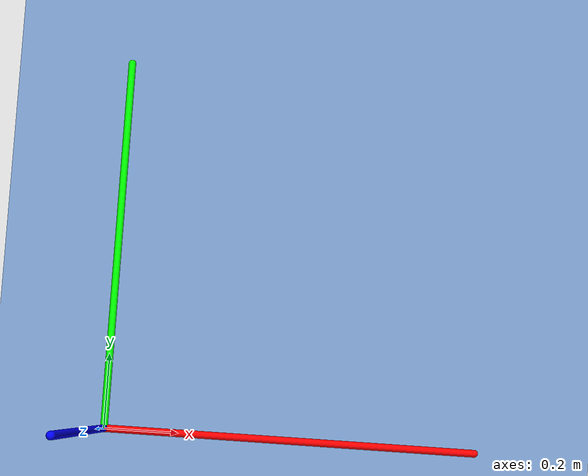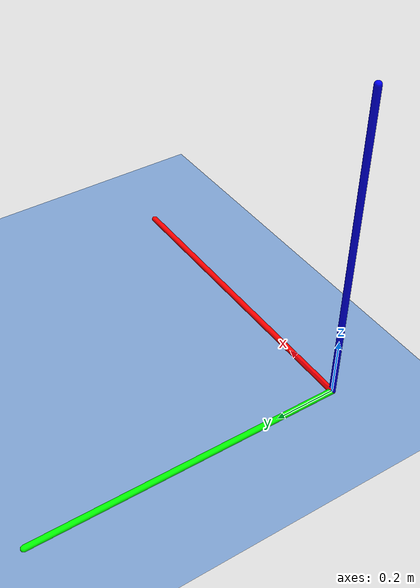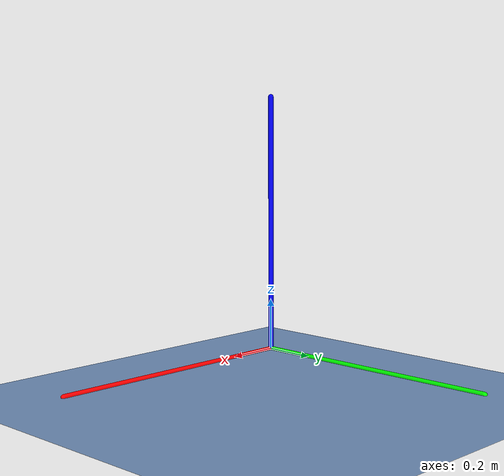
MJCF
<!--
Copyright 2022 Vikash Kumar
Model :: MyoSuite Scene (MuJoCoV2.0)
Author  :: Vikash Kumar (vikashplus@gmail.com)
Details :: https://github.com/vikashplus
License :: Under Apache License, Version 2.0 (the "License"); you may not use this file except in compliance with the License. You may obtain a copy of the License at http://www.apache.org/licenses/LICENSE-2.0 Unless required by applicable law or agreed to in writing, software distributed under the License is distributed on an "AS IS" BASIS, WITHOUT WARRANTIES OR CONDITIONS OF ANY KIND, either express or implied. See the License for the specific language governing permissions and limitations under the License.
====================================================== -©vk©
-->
<mujoco model="flat_floor_scene">
        <!-- load texture and msh files -©vk©-->

        <compiler angle="radian" meshdir=".." texturedir=".."/>
        <asset>
            <!-- Scene -©vk©-->
            <texture builtin="gradient" height="1536" rgb1="1 1 1" rgb2="1 1 1" type="skybox" width="256"/>

            <texture name="texfloor" type="2d" builtin="checker" width="512" height="512" rgb1="0.561 0.725 0.937"  rgb2="0.384 0.494 0.639"  mark="edge" markrgb="1 1 1" gridlayout="8" />
            <material name="matfloor" reflectance="0" texture="texfloor" texrepeat="1 1" texuniform="true" />
            <hfield name="terrain" size="7 7 1 0.001" nrow="100" ncol="100"/>
        </asset>

        <statistic extent="5" center="0 -1 1"/>

        <visual>
            <scale light=".05" framewidth=".005"/>
            <headlight ambient=".4 .4 .4" diffuse="0.50 0.50 0.50" specular="0.50 0.50 0.50"/>
            <global elevation="-15"/>
            <rgba actuator='0 0 1 1' actuatorpositive='1 0 0 1' actuatornegative='0.0 0.0 1.0 1'/>
        </visual>

        <!-- Add files to the world -©vk©-->
        <worldbody>
            <!-- indoor lights -©vk©-->
            <light directional="false" diffuse=".5 .5 .5" specular="0.25 0.25 0.25" pos="0 -3 3" dir="0 1 -1" mode="trackcom"/>
            <camera name="isometric_view" pos="2 -2 1.25" xyaxes="1 1 0 -1 1 10" mode="trackcom"/>

            <!-- X-axis (Red) -->
            <geom name="x_axis" type="capsule" size="0.01 0.5" pos="0.5 0 0" euler="0 1.57 0" rgba="1 0 0 1" contype="0" conaffinity="0" group="2"/>
            <!-- Y-axis (Green) -->
            <geom name="y_axis" type="capsule" size="0.01 0.5" pos="0 0.5 0" euler="1.57 0 0" rgba="0 1 0 1" contype="0" conaffinity="0" group="2"/>
            <!-- Z-axis (Blue) -->
            <geom name="z_axis" type="capsule" size="0.01 0.5" pos="0 0 0.5" euler="0 0 0" rgba="0 0 1 1" contype="0" conaffinity="0" group="2"/>

            <geom name="floor" quat="1 0 0 0" rgba="0.5 0.5 0.5 1" material="matfloor" size="100 100 0.125" type="plane" />

        </worldbody>
    </mujoco>
